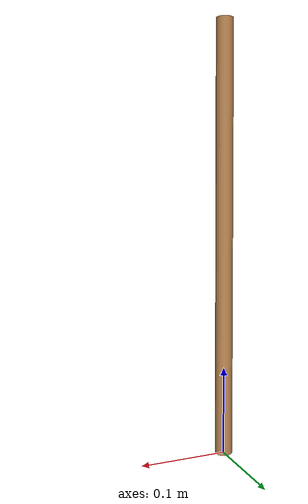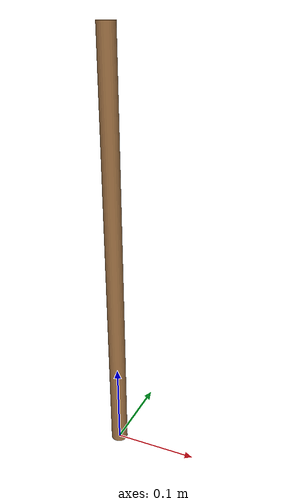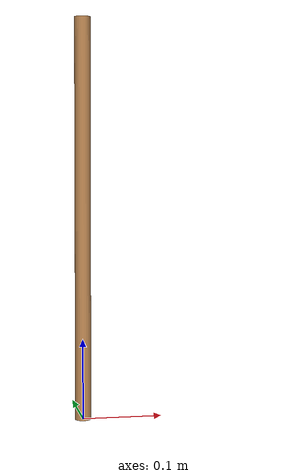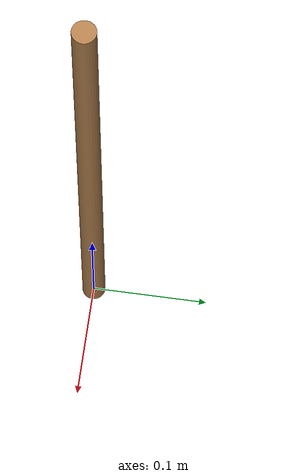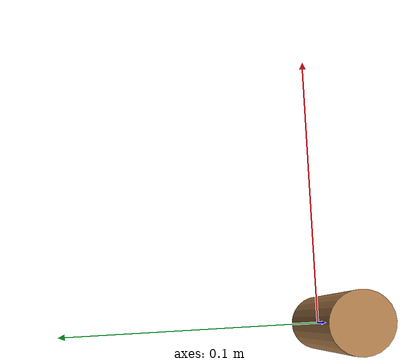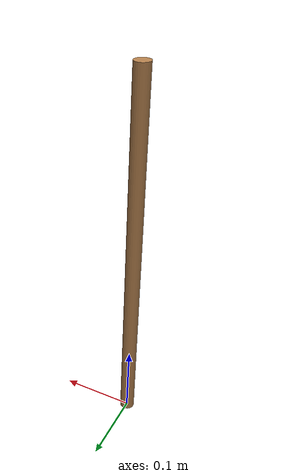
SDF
<?xml version='1.0'?>
<sdf version='1.6'>
  <model name='wooden_joint'>
    <link name='link_0'>
      <pose frame=''>0 0 0.25 0 -0 0</pose>
      <inertial>
        <mass>0.00215981</mass>
        <inertia>
          <ixx>0.00018028</ixx>
          <ixy>0</ixy>
          <ixz>0</ixz>
          <iyy>0.00018028</iyy>
          <iyz>0</iyz>
          <izz>5.8e-07</izz>
        </inertia>
        <pose frame=''>0 0 0 0 -0 0</pose>
      </inertial>
      <gravity>1</gravity>
      <self_collide>0</self_collide>
      <kinematic>0</kinematic>
      <visual name='visual'>
        <pose frame=''>0 0 0 0 -0 0</pose>
        <geometry>
          <cylinder>
            <radius>0.01</radius>
            <length>0.5</length>
          </cylinder>
        </geometry>
        <material>
          <lighting>1</lighting>
          <script>
            <uri>file://media/materials/scripts/gazebo.material</uri>
            <name>Gazebo/Wood</name>
          </script>
          <shader type='pixel'>
            <normal_map>__default__</normal_map>
          </shader>
          <ambient>0.3 0.3 0.3 1</ambient>
          <diffuse>0.7 0.7 0.7 1</diffuse>
          <specular>0.01 0.01 0.01 1</specular>
          <emissive>0 0 0 1</emissive>
        </material>
        <transparency>0</transparency>
        <cast_shadows>1</cast_shadows>
      </visual>
      <collision name='collision'>
        <laser_retro>0</laser_retro>
        <max_contacts>10</max_contacts>
        <pose frame=''>0 0 0 0 -0 0</pose>
        <geometry>
          <cylinder>
            <radius>0.01</radius>
            <length>0.5</length>
          </cylinder>
        </geometry>
        <surface>
          <friction>
            <ode>
              <mu>1</mu>
              <mu2>1</mu2>
              <fdir1>0 0 0</fdir1>
              <slip1>0</slip1>
              <slip2>0</slip2>
            </ode>
            <torsional>
              <coefficient>1</coefficient>
              <patch_radius>0</patch_radius>
              <surface_radius>0</surface_radius>
              <use_patch_radius>1</use_patch_radius>
              <ode>
                <slip>0</slip>
              </ode>
            </torsional>
          </friction>
          <bounce>
            <restitution_coefficient>0</restitution_coefficient>
            <threshold>1e+06</threshold>
          </bounce>
          <contact>
            <collide_without_contact>0</collide_without_contact>
            <collide_without_contact_bitmask>1</collide_without_contact_bitmask>
            <collide_bitmask>1</collide_bitmask>
            <ode>
              <soft_cfm>0</soft_cfm>
              <soft_erp>0.2</soft_erp>
              <kp>1e+13</kp>
              <kd>1</kd>
              <max_vel>0.01</max_vel>
              <min_depth>0</min_depth>
            </ode>
            <bullet>
              <split_impulse>1</split_impulse>
              <split_impulse_penetration_threshold>-0.01</split_impulse_penetration_threshold>
              <soft_cfm>0</soft_cfm>
              <soft_erp>0.2</soft_erp>
              <kp>1e+13</kp>
              <kd>1</kd>
            </bullet>
          </contact>
        </surface>
      </collision>
    </link>
    <static>1</static>
    <allow_auto_disable>1</allow_auto_disable>
  </model>
</sdf>
